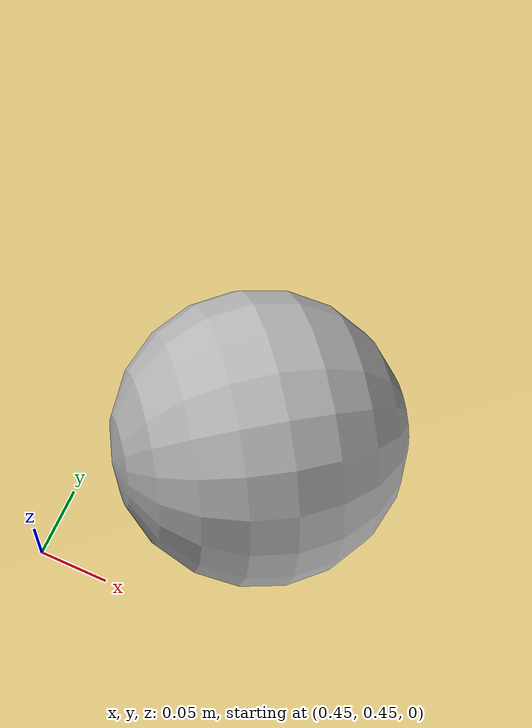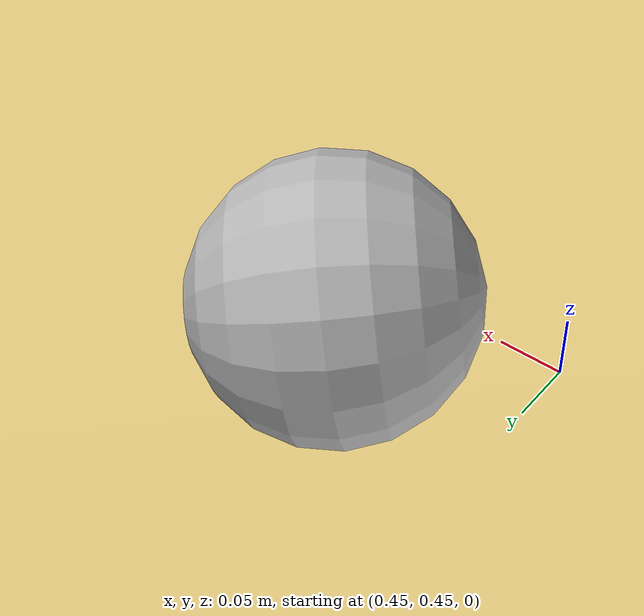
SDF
<sdf version='1.10'>
  <world name='default'>
    <gravity>0 0 -9.8000000000000007</gravity>
    <magnetic_field>5.5644999999999998e-06 2.2875799999999999e-05 -4.2388400000000002e-05</magnetic_field>
    <atmosphere type='adiabatic'/>
    <physics type='ode'>
      <max_step_size>0.001</max_step_size>
      <real_time_factor>1</real_time_factor>
      <real_time_update_rate>1000</real_time_update_rate>
    </physics>
    <scene>
      <ambient>0.400000006 0.400000006 0.400000006 1</ambient>
      <background>0.699999988 0.699999988 0.699999988 1</background>
      <shadows>true</shadows>
    </scene>
    <model name='sandy_terrain'>
      <static>true</static>
      <link name='sand_surface'>
        <collision name='collision'>
          <geometry>
            <mesh>
              <uri>file:///home/turtle_on_land/gazebo_worlds/SANDY_TERRAINII.dae</uri>
            </mesh>
          </geometry>
          <surface>
            <friction>
              <ode>
                <mu>0.40000000000000002</mu>
                <mu2>0.40000000000000002</mu2>
                <slip1>0.20000000000000001</slip1>
                <slip2>0.20000000000000001</slip2>
              </ode>
              <torsional>
                <coefficient>0.02</coefficient>
                <use_patch_radius>true</use_patch_radius>
                <patch_radius>0.050000000000000003</patch_radius>
                <surface_radius>0.050000000000000003</surface_radius>
                <ode>
                  <slip>0.01</slip>
                </ode>
              </torsional>
            </friction>
            <bounce>
              <restitution_coefficient>0.050000000000000003</restitution_coefficient>
              <threshold>100</threshold>
            </bounce>
            <contact>
              <ode>
                <soft_cfm>0.10000000000000001</soft_cfm>
                <soft_erp>0.10000000000000001</soft_erp>
                <kp>500</kp>
                <kd>5</kd>
                <max_vel>0.10000000000000001</max_vel>
                <min_depth>0.01</min_depth>
              </ode>
            </contact>
          </surface>
        </collision>
        <visual name='visual'>
          <geometry>
            <mesh>
              <uri>file:///home/turtle_on_land/gazebo_worlds/SANDY_TERRAINII.dae</uri>
            </mesh>
          </geometry>
        </visual>
        <pose>0 0 0 0 0 0</pose>
        <inertial>
          <pose>0 0 0 0 0 0</pose>
          <mass>1</mass>
          <inertia>
            <ixx>1</ixx>
            <ixy>0</ixy>
            <ixz>0</ixz>
            <iyy>1</iyy>
            <iyz>0</iyz>
            <izz>1</izz>
          </inertia>
        </inertial>
        <enable_wind>false</enable_wind>
      </link>
      <pose>0 0 0 0 0 0</pose>
      <self_collide>false</self_collide>
    </model>
    <model name='test_sphere'>
      <static>false</static>
      <link name='link'>
        <inertial>
          <mass>1</mass>
          <pose>0 0 0 0 0 0</pose>
          <inertia>
            <ixx>1</ixx>
            <ixy>0</ixy>
            <ixz>0</ixz>
            <iyy>1</iyy>
            <iyz>0</iyz>
            <izz>1</izz>
          </inertia>
        </inertial>
        <collision name='collision'>
          <geometry>
            <sphere>
              <radius>0.10000000000000001</radius>
            </sphere>
          </geometry>
          <surface>
            <contact>
              <ode>
                <soft_cfm>0.050000000000000003</soft_cfm>
                <soft_erp>0.20000000000000001</soft_erp>
              </ode>
            </contact>
            <friction>
              <ode/>
            </friction>
            <bounce/>
          </surface>
        </collision>
        <visual name='visual'>
          <geometry>
            <sphere>
              <radius>0.10000000000000001</radius>
            </sphere>
          </geometry>
        </visual>
        <pose>0 0 1 0 0 0</pose>
        <enable_wind>false</enable_wind>
      </link>
      <pose>-0.21807787462375605 -0.048271984157666981 0.20516829978018342 -1.7182881460127526 0.6241334444689095 -0.99688965925541484</pose>
      <self_collide>false</self_collide>
    </model>
  </world>
</sdf>
